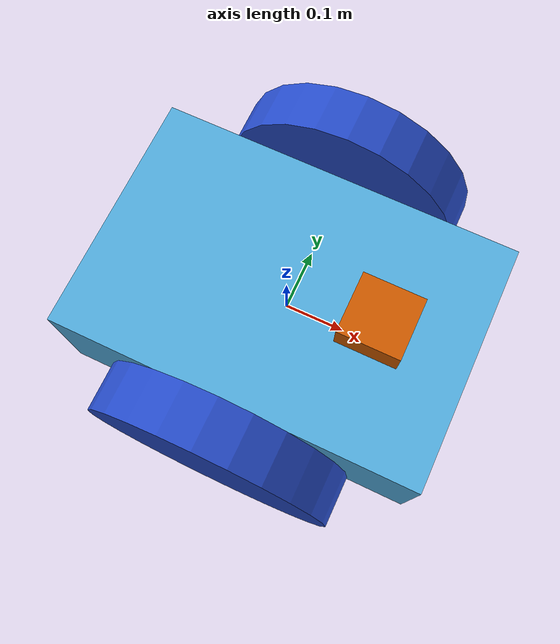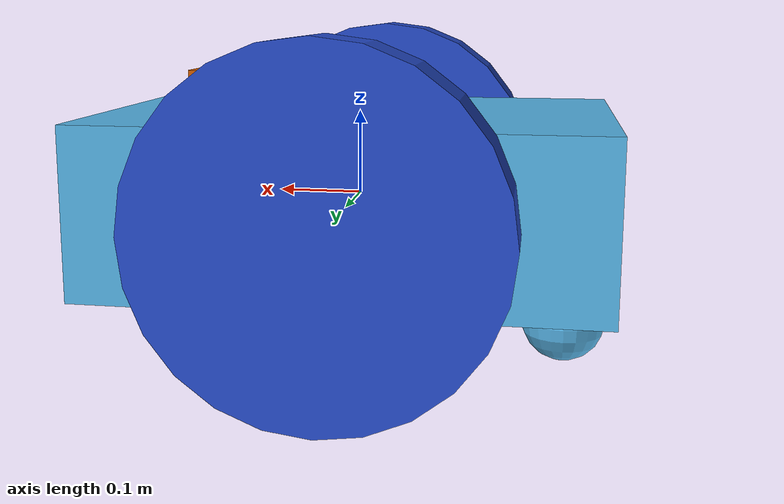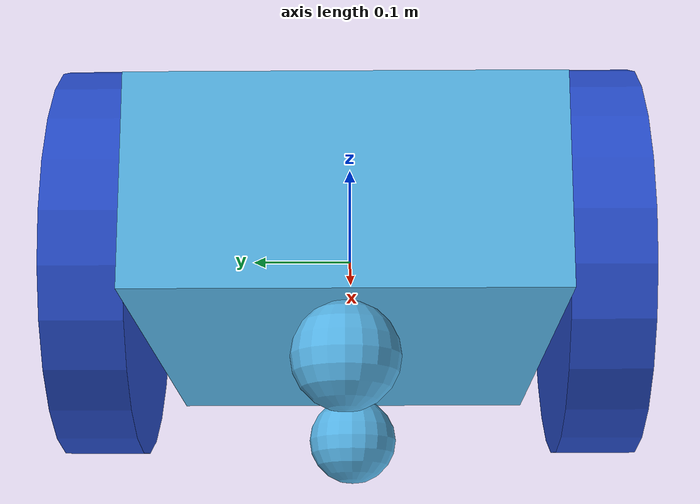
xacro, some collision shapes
<?xml version='1.0'?>

<robot name="my_robot" xmlns:xacro="http://www.ros.org/wiki/xacro">
  <xacro:include filename="$(find my_robot)/urdf/my_robot.gazebo" />
  <link name="robot_footprint"></link>

  <joint name="robot_footprint_joint" type="fixed">
    <origin xyz="0 0 0" rpy="0 0 0" />
    <parent link="robot_footprint"/>
    <child link="chassis" />
  </joint>

  <link name='chassis'>
    <pose>0 0 0.1 0 0 0</pose>

    <inertial>
      <mass value="12.0"/>
      <origin xyz="0.0 0 0" rpy=" 0 0 0"/>
      <inertia
          ixx="0.1" ixy="0" ixz="0"
          iyy="0.1" iyz="0"
          izz="0.1"
      />
    </inertial>

    <collision name='collision'>
      <origin xyz="0 0 0" rpy=" 0 0 0"/>
      <geometry>
        <box size=".6 .4 .2"/>
      </geometry>
    </collision>

    <visual name='chassis_visual'>
      <origin xyz="0 0 0" rpy=" 0 0 0"/>
      <geometry>
        <box size=".6 .4 .2"/>
      </geometry>
    </visual>

    <collision name='back_caster_collision'>
      <origin xyz="-0.25 0 -0.15" rpy=" 0 0 0"/>
      <geometry>
        <sphere radius="0.0499"/>
      </geometry>
    </collision>

    <visual name='back_caster_visual'>
      <origin xyz="-0.25 0 -0.15" rpy=" 0 0 0"/>
      <geometry>
        <sphere radius="0.05"/>
      </geometry>
    </visual>

    <collision name='front_caster_collision'>
      <origin xyz="0.25 0 -0.15" rpy=" 0 0 0"/>
      <geometry>
        <sphere radius="0.0499"/>
      </geometry>
    </collision>

    <visual name='front_caster_visual'>
      <origin xyz="0.25 0 -0.15" rpy=" 0 0 0"/>
      <geometry>
        <sphere radius="0.05"/>
      </geometry>
    </visual>

  </link>

<gazebo reference="left_wheel">
    <material>Gazebo/BlueGlow</material>
</gazebo>
<gazebo reference="right_wheel">
    <material>Gazebo/BlueGlow</material>
</gazebo>

  <link name='right_wheel'>
    <pose>0 0 0.2 0 0 0</pose>

    <inertial>
      <mass value="5.0"/>
      <origin xyz="0 0 0" rpy="0 1.57 1.57"/>
      <inertia
          ixx="0.1" ixy="0" ixz="0"
          iyy="0.1" iyz="0"
          izz="0.1"
      />
    </inertial>

    <collision name='right_wheel_collision'>
      <origin xyz="0 0 0" rpy="0 1.57 1.57"/>
      <geometry>
        <cylinder radius="0.2" length="0.08"/>
      </geometry>
    </collision>

    <visual name='right_wheel_visual'>
      <origin xyz="0 0 0" rpy="0 1.57 1.57"/>
      <geometry>
        <cylinder radius="0.2" length="0.08"/>
      </geometry>
    </visual>

  </link>
  <link name='left_wheel'>
    <pose>0 0 0.2 0 0 0</pose>

    <inertial>
      <mass value="5.0"/>
      <origin xyz="0 0 0" rpy="0 1.57 1.57"/>
      <inertia
          ixx="0.1" ixy="0" ixz="0"
          iyy="0.1" iyz="0"
          izz="0.1"
      />
    </inertial>

    <collision name='left_wheel_collision'>
      <origin xyz="0 0 0" rpy="0 1.57 1.57"/>
      <geometry>
        <cylinder radius="0.2" length="0.08"/>
      </geometry>
    </collision>

    <visual name='left_wheel_visual'>
      <origin xyz="0 0 0" rpy="0 1.57 1.57"/>
      <geometry>
        <cylinder radius="0.2" length="0.08"/>
      </geometry>
    </visual>

  </link>

  <joint type="continuous" name="left_wheel_hinge">
    <origin xyz="0 0.25 0" rpy="0 0 0"/>
    <child link="left_wheel"/>
    <parent link="chassis"/>
    <axis xyz="0 1 0" rpy="0 0 0"/>
    <limit effort="10000" velocity="1000"/>
    <dynamics damping="1.0" friction="1.0"/>
  </joint>

  <joint type="continuous" name="right_wheel_hinge">
    <origin xyz="0 -0.25 0" rpy="0 0 0"/>
    <child link="right_wheel"/>
    <parent link="chassis"/>
    <axis xyz="0 1 0" rpy="0 0 0"/>
    <limit effort="10000" velocity="1000"/>
    <dynamics damping="1.0" friction="1.0"/>
  </joint>

  <link name='camera'>
    <pose>0 0 0 0 0 0</pose>

    <inertial>
      <mass value="0.1"/>
      <origin xyz="0 0 0" rpy="0 0 0"/>
      <inertia
          ixx="0.000001" ixy="0" ixz="0"
          iyy="0.000001" iyz="0"
          izz="0.000001"
      />
    </inertial>

    <visual name='camera_visual'>
      <origin xyz="0 0 0" rpy="0 0 0"/>
      <geometry>
        <box size=".05 .05 .05"/>
      </geometry>
    </visual>

    <collision name='camera_collision'>
      <origin xyz="0 0 0" rpy="0 0 0"/>
      <geometry>
        <box size=".05 .05 .05"/>
      </geometry>
    </collision>
  </link>

  <joint type="fixed" name="camera_joint">
    <origin xyz="0.2 0 0" rpy="0 0 0"/>
    <child link="camera"/>
    <parent link="chassis"/>
    <axis xyz="0 1 0" rpy="0 0 0"/>
  </joint>

  <link name='hokuyo'>
    <pose>0 0 0 0 0 0</pose>
    <inertial>
      <mass value="0.00001"/>
      <origin xyz="0 0 0" rpy="0 0 0"/>
      <inertia
          ixx="0.000001" ixy="0" ixz="0"
          iyy="0.000001" iyz="0"
          izz="0.000001"
      />
    </inertial>

    <visual name='hokuyo_visual'>
      <origin xyz="0 0 0" rpy="0 0 0"/>
      <geometry>
        <mesh filename="package://my_robot/meshes/hokuyo.dae"/>
      </geometry>
    </visual>

    <collision name='hokuyo_collision'>
      <origin xyz="0 0 0" rpy="0 0 0"/>
      <geometry>
        <box size=".1 .1 .1"/>
      </geometry>
    </collision>
  </link>

  <joint type="fixed" name="hokuyo_joint">
    <origin xyz="0.15 0 0.1" rpy="0 0 0"/>
    <child link="hokuyo"/>
    <parent link="chassis"/>
    <axis xyz="0 1 0" rpy="0 0 0"/>
  </joint>

</robot>
